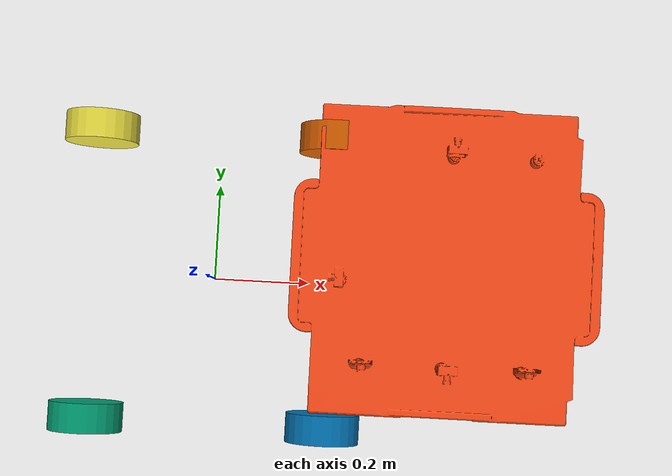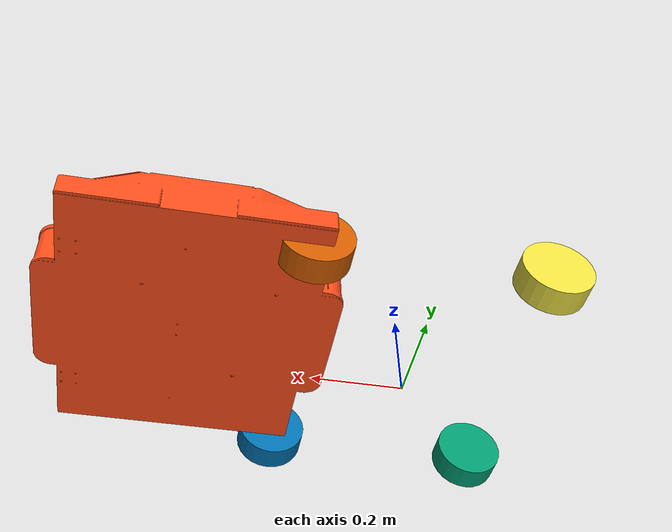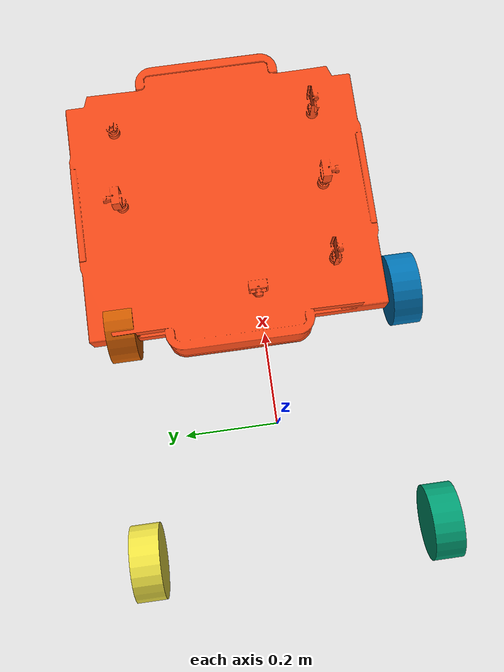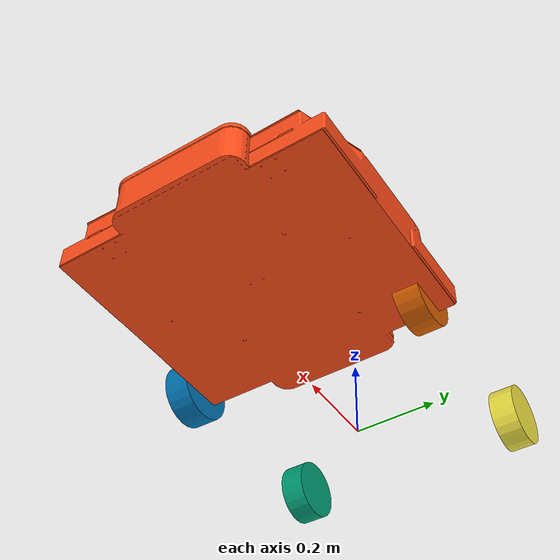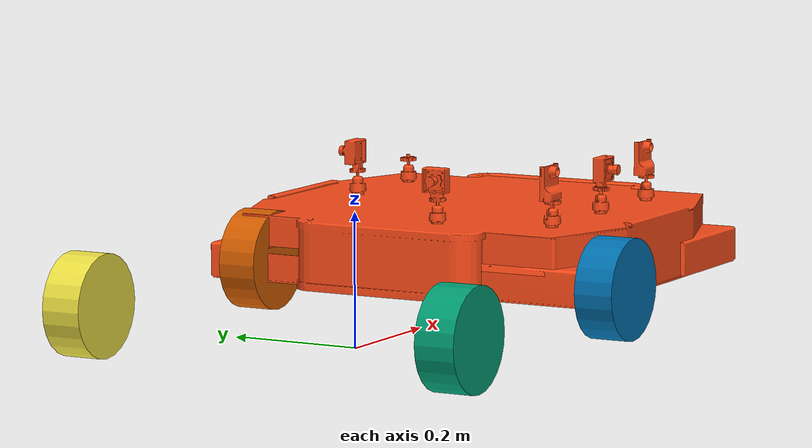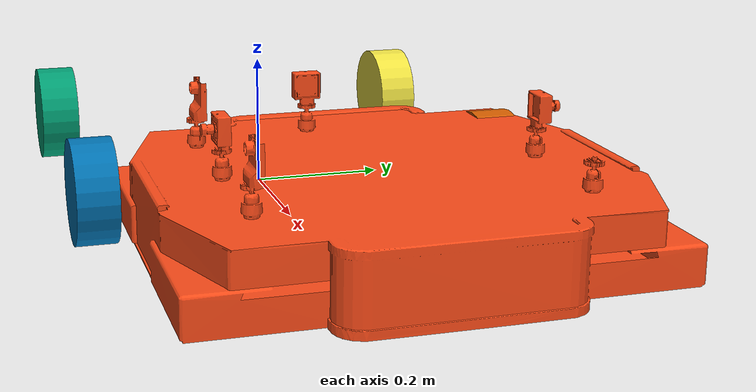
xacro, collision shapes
<?xml version="1.0"?>
<robot xmlns:xacro="http://www.ros.org/wiki/xacro" >

    <xacro:include filename="$(find onsemi_amr)/description/robots/inertial_macros.xacro"/>
    <xacro:include filename="$(find onsemi_amr)/description/urdf/wheels/omni_wheel.urdf.xacro" />

    <!--Body Dimensions-->
    <xacro:property name="chassis_length" value="0.43"/>
    <xacro:property name="chassis_width" value="0.53"/>
    <xacro:property name="chassis_height" value="0.138"/>
    <xacro:property name="chassis_ground_clearance" value="0.048"/>
    <xacro:property name="chassis_density" value="8000.0"/>
    <xacro:property name="chassis_mass" value="${chassis_density * chassis_length * chassis_width * chassis_height}"/>

    <!-- wheel dimensions-->
    <xacro:property name="wheel_radius" value="0.0762"/>
    <xacro:property name="wheel_thickness" value="0.06"/>
    <xacro:property name="wheel_mass" value="0.01"/>

    <xacro:property name="wheel_offset_x" value="0.490"/> <!-- chassis_length + wheel_thickness -->
    <xacro:property name="wheel_offset_y" value="0.300"/>
    <xacro:property name="wheel_offset_z" value="0.0762"/> <!-- wheel_radius-->

    <xacro:property name="wheel_offset" value="${chassis_length/2 - wheel_radius}"/>
    <xacro:property name="wheel_separation" value="${chassis_width + wheel_thickness}"/>

    <material name="white">
        <color rgba="1 1 1 1" />
    </material>

    <material name="orange">
        <color rgba="1 0.3 0.1 1"/>
    </material>

    <material name="blue">
        <color rgba="0.2 0.2 1 1"/>
    </material>

    <material name="black">
        <color rgba="0 0 0 1"/>
    </material>

    <material name="red">
        <color rgba="1 0 0 1"/>
    </material>

    <!-- BASE LINK -->
    <link name="base_link"> </link>

    <!-- CHASSIS LINK -->
    <joint name="chassis_joint" type="fixed">
        <parent link="base_link"/>
        <child link="chassis"/>
        <origin xyz="0 0 0" rpy="0 0 0"/>
    </joint>

    <!--Body link details of the robot chassis -->
    <link name="chassis">
        <visual>
            <origin xyz="${chassis_length/2} ${chassis_width/2} ${chassis_ground_clearance}" rpy="0 0 ${-PI/2}"/>
            <geometry>
                <mesh filename="package://onsemi_amr/description/meshes/base/amr-base.dae" scale="1 1 1"/>
            </geometry>
            <material name="orange"/>
        </visual>

        <collision>
            <origin xyz="${chassis_length/2} ${chassis_width/2} ${chassis_ground_clearance}"/>
            <geometry>
                <mesh filename="package://onsemi_amr/description/meshes/base/amr-base.dae" scale="1 1 1"/>
            </geometry>
        </collision>

        <xacro:inertial_box mass="${chassis_mass}" x="${chassis_length}" y="${chassis_width}" z="${chassis_height}">
            <origin xyz="${chassis_length/2} ${chassis_width/2} ${chassis_ground_clearance}"/>
        </xacro:inertial_box>

    </link>

    <!-- instantiate robot components -->
    <xacro:omni_wheel prefix="front_left" orientation="left" parent="chassis" origin_xyz="${-wheel_offset_x/2} ${-wheel_offset_y} ${wheel_offset_z}" origin_rpy="0 0 0"> </xacro:omni_wheel>
    <xacro:omni_wheel prefix="front_right"  orientation="right"  parent="chassis" origin_xyz="${-wheel_offset_x/2} ${wheel_offset_y} ${wheel_offset_z}" origin_rpy="0 0 0"> </xacro:omni_wheel>
    <xacro:omni_wheel prefix="rear_left"  orientation="left" parent="chassis" origin_xyz="${wheel_offset_x/2} ${-wheel_offset_y} ${wheel_offset_z}" origin_rpy="0 0 0"> </xacro:omni_wheel>
    <xacro:omni_wheel prefix="rear_right"   orientation="right"  parent="chassis" origin_xyz="${wheel_offset_x/2} ${wheel_offset_y} ${wheel_offset_z}" origin_rpy="0 0 0">  </xacro:omni_wheel>

</robot>

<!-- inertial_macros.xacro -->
<robot xmlns:xacro="http://www.ros.org/wiki/xacro" >

    <!-- Specify some standard inertial calculations https://en.wikipedia.org/wiki/List_of_moments_of_inertia -->
    <!-- These make use of xacro's mathematical functionality -->

    <xacro:macro name="inertial_sphere" params="mass radius *origin">
        <inertial>
            <xacro:insert_block name="origin"/>
            <mass value="${mass}" />
            <inertia ixx="${(2/5) * mass * (radius*radius)}" ixy="0.0" ixz="0.0"
                    iyy="${(2/5) * mass * (radius*radius)}" iyz="0.0"
                    izz="${(2/5) * mass * (radius*radius)}" />
        </inertial>
    </xacro:macro>

    <xacro:macro name="inertial_box" params="mass x y z *origin">
        <inertial>
            <xacro:insert_block name="origin"/>
            <mass value="${mass}" />
            <inertia ixx="${(1/12) * mass * (y*y+z*z)}" ixy="0.0" ixz="0.0"
                    iyy="${(1/12) * mass * (x*x+z*z)}" iyz="0.0"
                    izz="${(1/12) * mass * (x*x+y*y)}" />
        </inertial>
    </xacro:macro>

</robot>

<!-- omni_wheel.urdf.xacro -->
<robot xmlns:xacro="http://ros.org/wiki/xacro" name="wheel">

 <xacro:include filename="$(find onsemi_amr)/description/robots/inertial_macros.xacro"/>

<!-- constants -->
<xacro:property name="PI" value="3.141592653" />
<xacro:property name="wheel_radius" value="0.0765" />
<xacro:property name="wheel_height" value="0.1524" />
<xacro:property name="wheel_mass" value="0.600" />

<!-- calculate intertia -->
<xacro:macro name="cylinder_inertia" params="m r h">
    <inertia ixx="${m*(3*r*r+h*h)/12}" ixy="0" ixz="0"
        iyy="${m*r*r/2}" iyz="0"
        izz="${m*(3*r*r+h*h)/12}" />
</xacro:macro>

<!--  define wheel -->
<xacro:macro name="omni_wheel" params="orientation prefix parent origin_xyz origin_rpy">

    <joint name="${prefix}_wheel_joint" type="continuous">
        <parent link="${parent}" />
        <child link = "${prefix}_wheel_link" />
        <origin xyz="${origin_xyz}" rpy="${origin_rpy}" />
        <axis xyz="0 1 0" rpy="0 0 0" />
        <limit effort="100" velocity="100"/>
        <joint_properties damping="0.5" friction="0.0" />
    </joint>

    <link name="${prefix}_wheel_link">
        <visual>
            <origin xyz="0 0 0" rpy="0 0 0" />
            <geometry>
                <xacro:if value = "${orientation == 'left'}">
                    <mesh filename="package://onsemi_amr/description/meshes/wheels/amr-omni-left-wheel.dae" scale="1 1 1"/>
                </xacro:if>
                <xacro:unless value = "${orientation == 'left'}">
                    <mesh filename="package://onsemi_amr/description/meshes/wheels/amr-omni-right-wheel.dae" scale="1 1 1"/>
                </xacro:unless>
            </geometry>
        </visual>

        <collision>
            <origin xyz="0 0 0" rpy="${PI/2} 0 0" />
            <geometry>
                <cylinder length="0.06" radius="${wheel_radius}" />
            </geometry>
        </collision>

        <inertial>
            <mass value="${wheel_mass}" />
            <origin xyz="0 0 0" rpy="0 0 0" />
            <xacro:cylinder_inertia m="${wheel_mass}" r="${wheel_radius}" h="${wheel_height}" />
        </inertial>
    </link>

    <gazebo reference="${prefix}_wheel_link" >
        <mu1 value="0.25"/>
        <mu2 value="0.25"/>
        <kp value="10000000.0" />
        <kd value="1.0" />
        <fdur1 value = "1 0 0" />
        <turnGravityOff>false</turnGravityOff>
    </gazebo>

</xacro:macro>

</robot>
